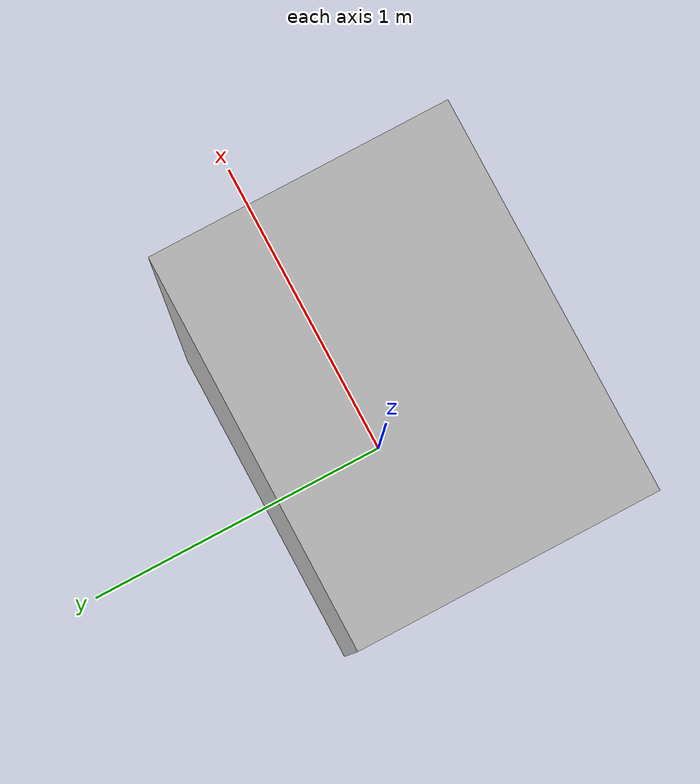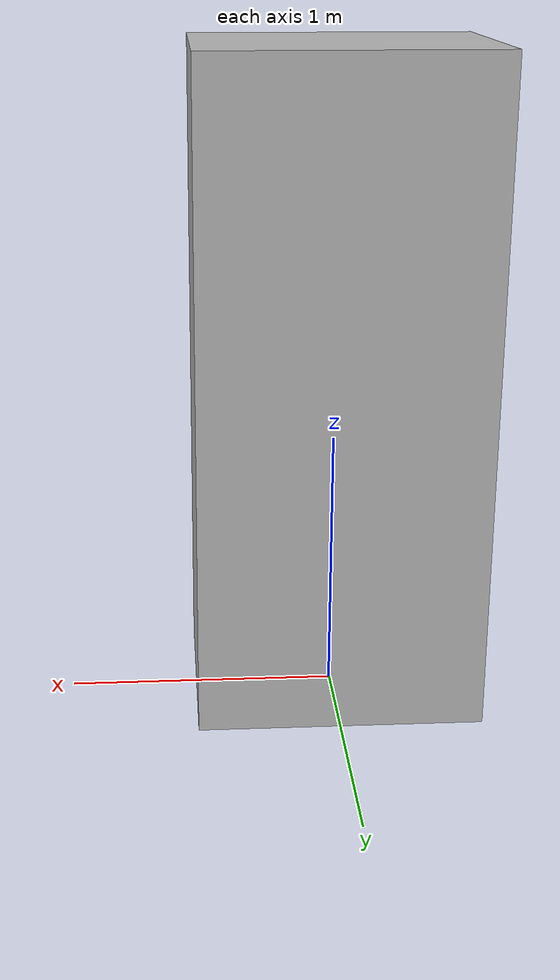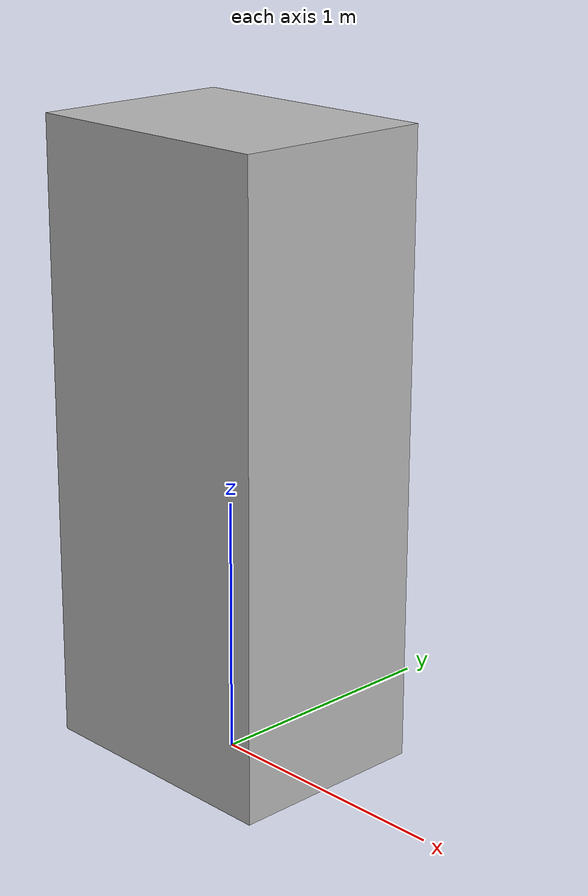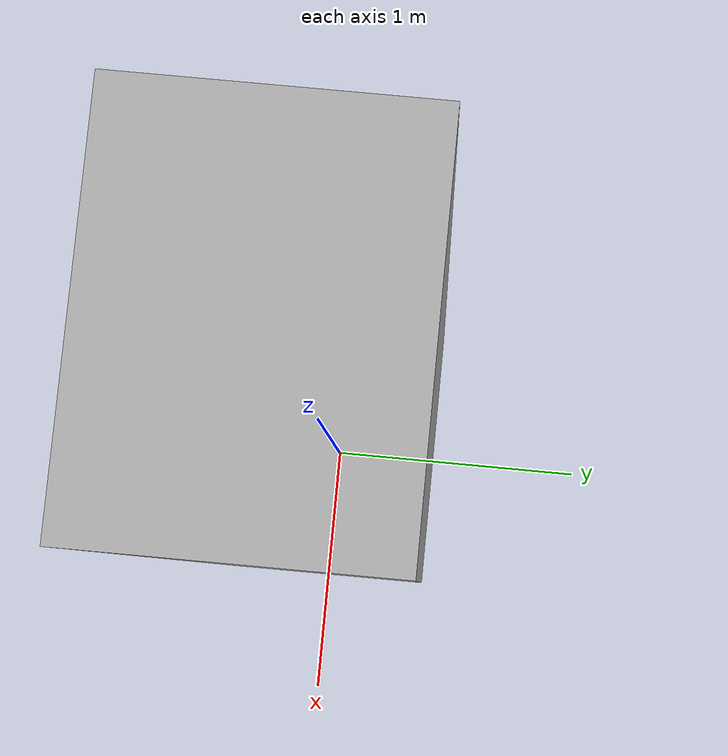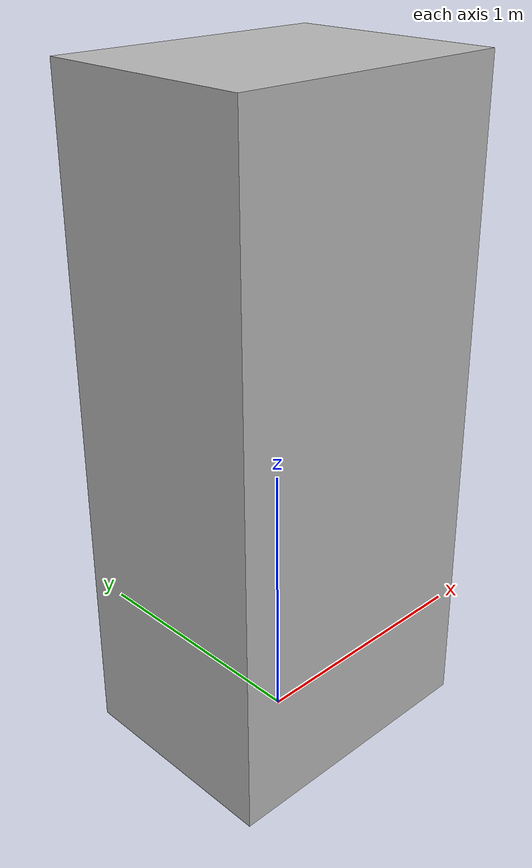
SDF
<?xml version="1.0" ?>
<sdf version="1.6">
  <model name="boxl">
    <static>true</static>
    <link name="link">
      <collision name="collision">
        <geometry>
          <mesh>
            <scale>0.7 0.4 0.7</scale>
            <uri>model://boxl/meshes/box.dae</uri>
          </mesh>
        </geometry>
      </collision>
      <visual name="visual">
        <geometry>
          <mesh>
            <scale>0.7 0.4 0.7</scale>
            <uri>model://boxl/meshes/box.dae</uri>
          </mesh>
        </geometry>
       <material>
         <script>
           <uri>model://stand/materials/scripts</uri>
           <uri>model://stand/materials/textures</uri>
           <name>black/Diffuse</name>
         </script>
       </material>
      </visual>
    </link>
  </model>
</sdf>
